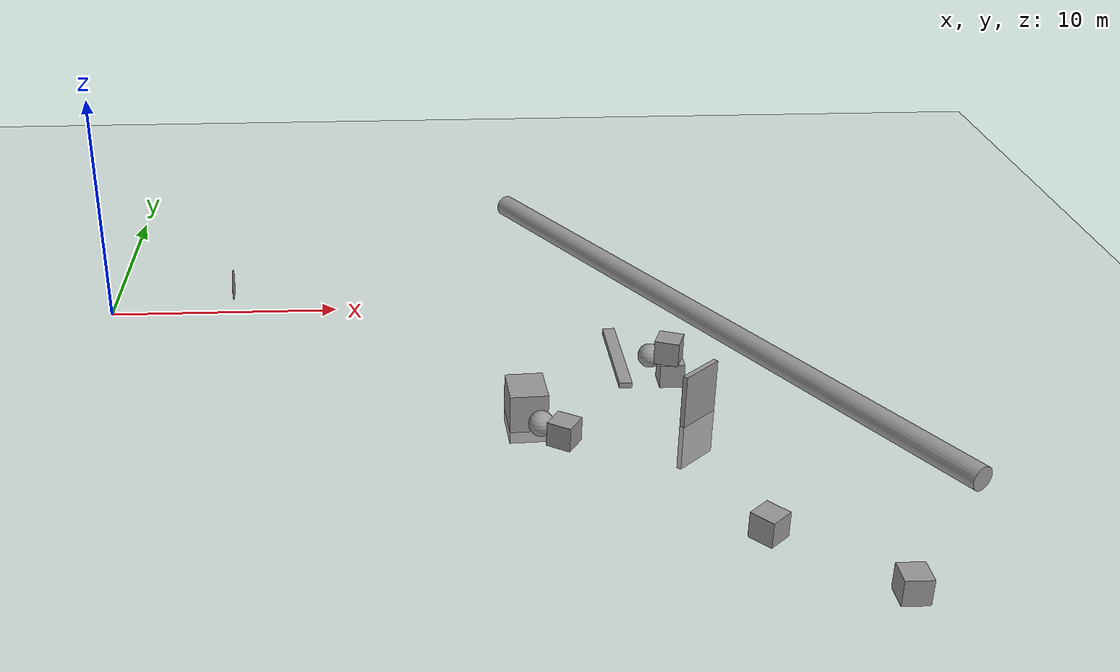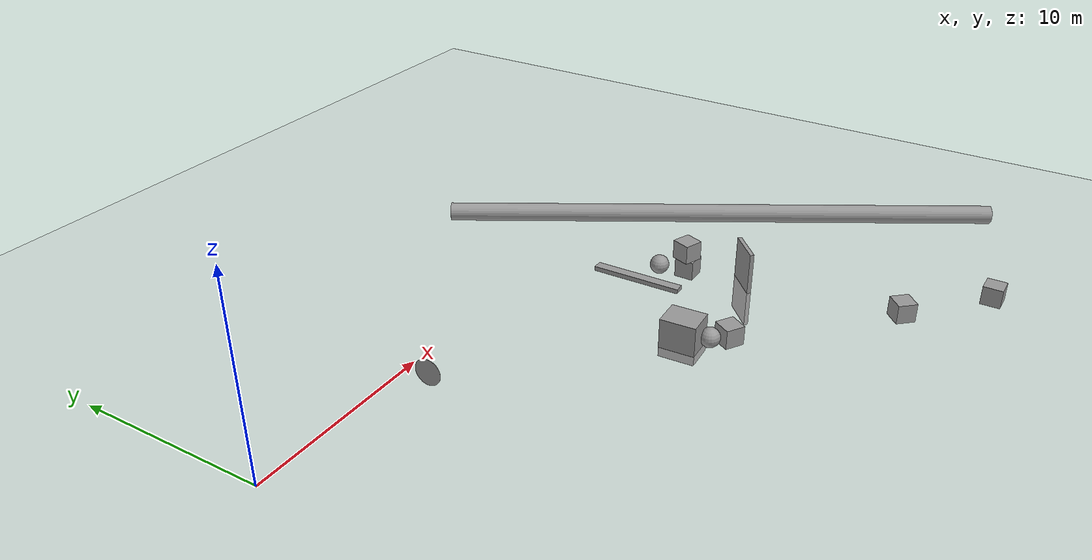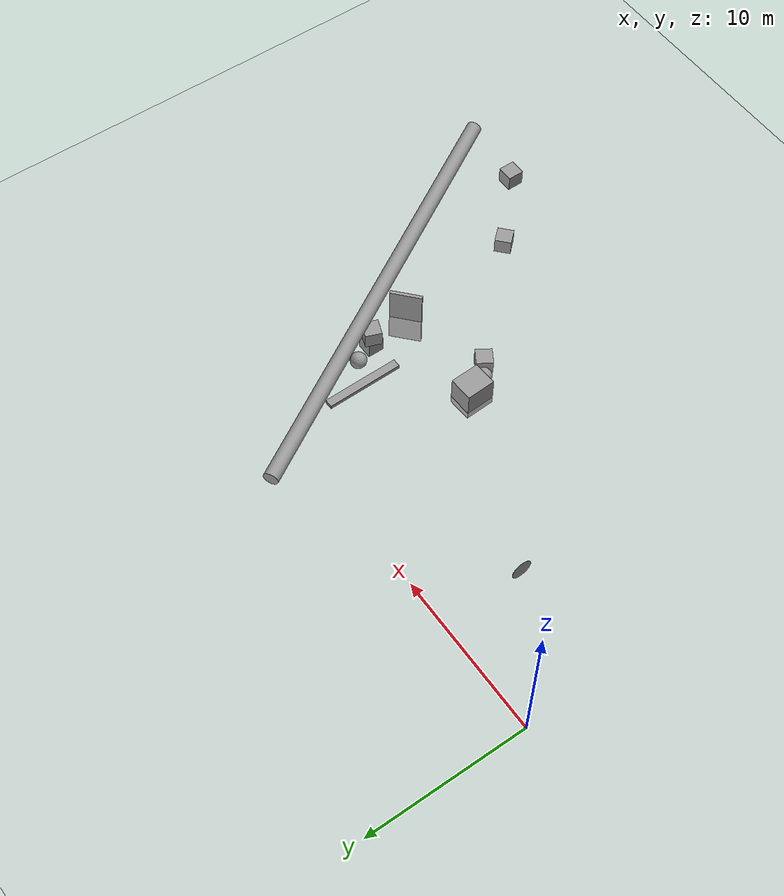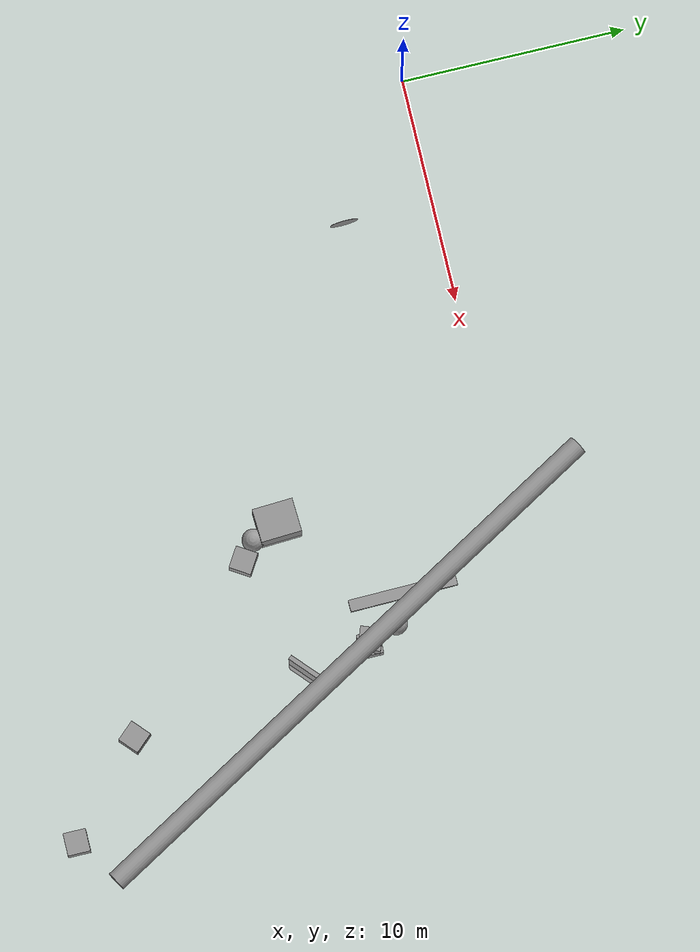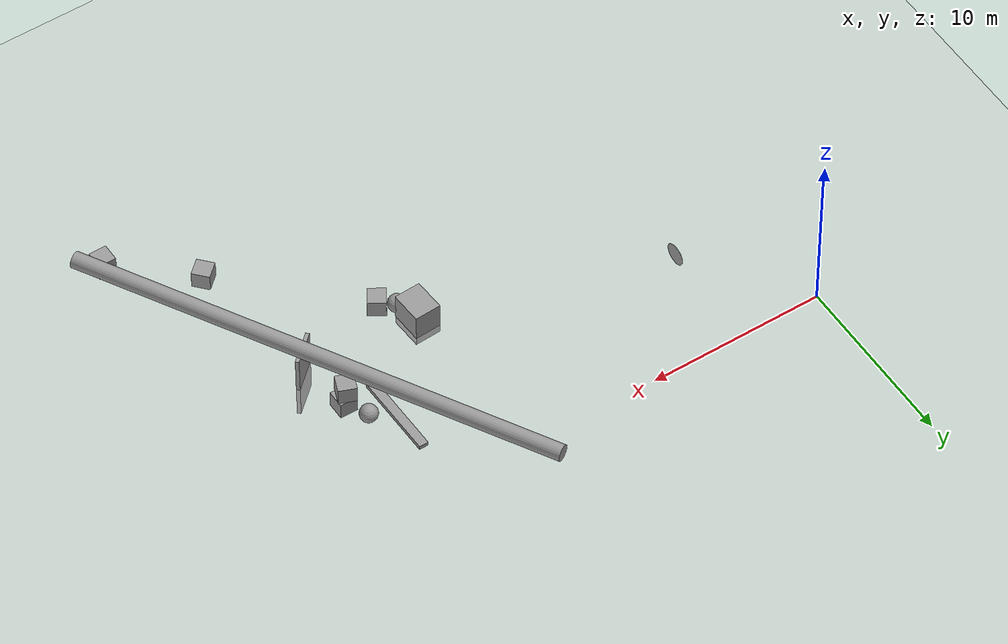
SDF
<sdf version="1.6">
 <world name="default">
  <model name="ground_plane">
   <static>1</static>
   <link name="link">
    <collision name="collision">
     <geometry><plane><normal>0 0 1</normal><size>100 100</size></plane></geometry>
     <surface><friction><ode><mu>100</mu><mu2>50</mu2></ode></friction></surface>
    </collision>
    <visual name="visual">
     <cast_shadows>0</cast_shadows>
     <geometry><plane><normal>0 0 1</normal><size>100 100</size></plane></geometry>
    </visual>
   </link>
  </model>
  <model name="unit_cylinder">
   <pose>6.04494 -4.06612 3.29937 1.54779 -1.06888 -1.51299</pose>
   <link name="unit_cylinder::unit_cylinder::link">
    <inertial>
     <mass>1</mass>
     <inertia><ixx>0.145833</ixx><ixy>0</ixy><ixz>0</ixz><iyy>0.145833</iyy><iyz>0</iyz><izz>0.125</izz></inertia>
    </inertial>
    <collision name="collision">
     <geometry><cylinder><radius>0.619942</radius><length>0.00810205</length></cylinder></geometry>
    </collision>
    <visual name="visual">
     <geometry><cylinder><radius>0.619942</radius><length>0.00810205</length></cylinder></geometry>
     <material>
      <script><name>Gazebo/Grey</name><uri>file://media/materials/scripts/gazebo.material</uri></script>
     </material>
    </visual>
   </link>
  </model>
  <model name="unit_cylinder_clone_clone_clone">
   <pose>24.7516 -8.36783 3.52876 -1.29227 -1.55467 -2.89457</pose>
   <link name="unit_cylinder_clone_clone_clone::unit_cylinder_clone_clone_clone::unit_cylinder_clone_clone::unit_cylinder_clone::unit_cylinder::link">
    <inertial>
     <mass>1</mass>
     <inertia><ixx>0.145833</ixx><ixy>0</ixy><ixz>0</ixz><iyy>0.145833</iyy><iyz>0</iyz><izz>0.125</izz></inertia>
    </inertial>
    <collision name="collision">
     <geometry><cylinder><radius>0.449034</radius><length>27.4152</length></cylinder></geometry>
    </collision>
    <visual name="visual">
     <geometry><cylinder><radius>0.449034</radius><length>27.4152</length></cylinder></geometry>
     <material>
      <script><name>Gazebo/Grey</name><uri>file://media/materials/scripts/gazebo.material</uri></script>
     </material>
    </visual>
   </link>
  </model>
  <model name="unit_box_8">
   <pose>24.5149 -10.0718 0.121188 -1e-06 -0 -0.835082</pose>
   <link name="link">
    <inertial>
     <mass>1</mass>
     <inertia>
      <ixx>0.166667</ixx>
      <ixy>0</ixy>
      <ixz>0</ixz>
      <iyy>0.166667</iyy>
      <iyz>0</iyz>
      <izz>0.166667</izz>
     </inertia>
    </inertial>
    <collision name="collision"><geometry><box><size>0.208515 1.93199 4.1258</size></box></geometry></collision>
    <visual name="visual">
     <geometry><box><size>0.208515 1.93199 4.1258</size></box></geometry>
     <material>
      <script><name>Gazebo/Grey</name><uri>file://media/materials/scripts/gazebo.material</uri></script>
     </material>
    </visual>
   </link>
  </model>
  <model name="unit_box_8_clone">
   <pose>21.9939 -5.25527 0.118652 -4e-06 -0.001058 -1.55411</pose>
   <link name="link">
    <inertial>
     <mass>1</mass>
     <inertia>
      <ixx>0.166667</ixx>
      <ixy>0</ixy>
      <ixz>0</ixz>
      <iyy>0.166667</iyy>
      <iyz>0</iyz>
      <izz>0.166667</izz>
     </inertia>
    </inertial>
    <collision name="collision"><geometry><box><size>4.79587 0.517599 0.242375</size></box></geometry></collision>
    <visual name="visual">
     <geometry><box><size>4.79587 0.517599 0.242375</size></box></geometry>
     <material>
      <script><name>Gazebo/Grey</name><uri>file://media/materials/scripts/gazebo.material</uri></script>
     </material>
    </visual>
   </link>
  </model>
  <model name="unit_box_9">
   <pose>23.9178 -7.19282 0.496315 -0.000773 -0.001808 -0.000508</pose>
   <link name="link">
    <inertial>
     <mass>1</mass>
     <inertia>
      <ixx>0.166667</ixx>
      <ixy>0</ixy>
      <ixz>0</ixz>
      <iyy>0.166667</iyy>
      <iyz>0</iyz>
      <izz>0.166667</izz>
     </inertia>
    </inertial>
    <collision name="collision"><geometry><box><size>1 1 1</size></box></geometry></collision>
    <visual name="visual">
     <geometry><box><size>1 1 1</size></box></geometry>
     <material>
      <script><name>Gazebo/Grey</name><uri>file://media/materials/scripts/gazebo.material</uri></script>
     </material>
    </visual>
   </link>
  </model>
  <model name="unit_box_10">
   <pose>23.8077 -7.14716 1.49605 -6.8e-05 -0.001979 -0.3702</pose>
   <link name="link">
    <inertial>
     <mass>1</mass>
     <inertia>
      <ixx>0.166667</ixx>
      <ixy>0</ixy>
      <ixz>0</ixz>
      <iyy>0.166667</iyy>
      <iyz>0</iyz>
      <izz>0.166667</izz>
     </inertia>
    </inertial>
    <collision name="collision"><geometry><box><size>1 1 1</size></box></geometry></collision>
    <visual name="visual">
     <geometry><box><size>1 1 1</size></box></geometry>
     <material>
      <script><name>Gazebo/Grey</name><uri>file://media/materials/scripts/gazebo.material</uri></script>
     </material>
    </visual>
   </link>
  </model>
  <model name="unit_sphere">
   <pose>23.2846 -5.86201 0.5 0 -0 0</pose>
   <link name="link">
    <inertial>
     <mass>1</mass>
     <inertia><ixx>0.1</ixx><ixy>0</ixy><ixz>0</ixz><iyy>0.1</iyy><iyz>0</iyz><izz>0.1</izz></inertia>
    </inertial>
    <collision name="collision"><geometry><sphere><radius>0.5</radius></sphere></geometry></collision>
    <visual name="visual">
     <geometry><sphere><radius>0.5</radius></sphere></geometry>
     <material>
      <script><name>Gazebo/Grey</name><uri>file://media/materials/scripts/gazebo.material</uri></script>
     </material>
    </visual>
   </link>
  </model>
  <model name="unit_box_11">
   <pose>17.7856 -9.87789 0.5 0 -0 0.051726</pose>
   <link name="link">
    <inertial>
     <mass>1</mass>
     <inertia>
      <ixx>0.166667</ixx>
      <ixy>0</ixy>
      <ixz>0</ixz>
      <iyy>0.166667</iyy>
      <iyz>0</iyz>
      <izz>0.166667</izz>
     </inertia>
    </inertial>
    <collision name="collision"><geometry><box><size>1.49176 1.81212 2.03875</size></box></geometry></collision>
    <visual name="visual">
     <geometry><box><size>1.49176 1.81212 2.03875</size></box></geometry>
     <material>
      <script><name>Gazebo/Grey</name><uri>file://media/materials/scripts/gazebo.material</uri></script>
     </material>
    </visual>
   </link>
  </model>
  <model name="unit_box_12">
   <pose>19.0925 -11.6866 0.5 0 -0 1.01074</pose>
   <link name="link">
    <inertial>
     <mass>1</mass>
     <inertia>
      <ixx>0.166667</ixx>
      <ixy>0</ixy>
      <ixz>0</ixz>
      <iyy>0.166667</iyy>
      <iyz>0</iyz>
      <izz>0.166667</izz>
     </inertia>
    </inertial>
    <collision name="collision"><geometry><box><size>1 1 1</size></box></geometry></collision>
    <visual name="visual">
     <geometry><box><size>1 1 1</size></box></geometry>
     <material>
      <script><name>Gazebo/Grey</name><uri>file://media/materials/scripts/gazebo.material</uri></script>
     </material>
    </visual>
   </link>
  </model>
  <model name="unit_sphere_0">
   <pose>18.2775 -11.0625 0.5 -0.022626 0.008982 -0.004439</pose>
   <link name="link">
    <inertial>
     <mass>1</mass>
     <inertia><ixx>0.1</ixx><ixy>0</ixy><ixz>0</ixz><iyy>0.1</iyy><iyz>0</iyz><izz>0.1</izz></inertia>
    </inertial>
    <collision name="collision"><geometry><sphere><radius>0.5</radius></sphere></geometry></collision>
    <visual name="visual">
     <geometry><sphere><radius>0.5</radius></sphere></geometry>
     <material>
      <script><name>Gazebo/Grey</name><uri>file://media/materials/scripts/gazebo.material</uri></script>
     </material>
    </visual>
   </link>
  </model>
  <model name="unit_box_19">
   <pose>29.3564 -21.533 0.5 -1e-06 1e-06 0.000354</pose>
   <link name="link">
    <inertial>
     <mass>1</mass>
     <inertia>
      <ixx>0.166667</ixx>
      <ixy>0</ixy>
      <ixz>0</ixz>
      <iyy>0.166667</iyy>
      <iyz>0</iyz>
      <izz>0.166667</izz>
     </inertia>
    </inertial>
    <collision name="collision"><geometry><box><size>1 1 1</size></box></geometry></collision>
    <visual name="visual">
     <geometry><box><size>1 1 1</size></box></geometry>
     <material>
      <script><name>Gazebo/Grey</name><uri>file://media/materials/scripts/gazebo.material</uri></script>
     </material>
    </visual>
   </link>
  </model>
  <model name="unit_box_8_clone_1">
   <pose>25.4849 -18.0487 0.499998 0 -0 -0.835213</pose>
   <link name="link">
    <inertial>
     <mass>1</mass>
     <inertia>
      <ixx>0.166667</ixx>
      <ixy>0</ixy>
      <ixz>0</ixz>
      <iyy>0.166667</iyy>
      <iyz>0</iyz>
      <izz>0.166667</izz>
     </inertia>
    </inertial>
    <collision name="collision"><geometry><box><size>1 0.999998 0.999997</size></box></geometry></collision>
    <visual name="visual">
     <geometry><box><size>1 0.999998 0.999997</size></box></geometry>
     <material>
      <script><name>Gazebo/Grey</name><uri>file://media/materials/scripts/gazebo.material</uri></script>
     </material>
    </visual>
   </link>
  </model>
 </world>
</sdf>
